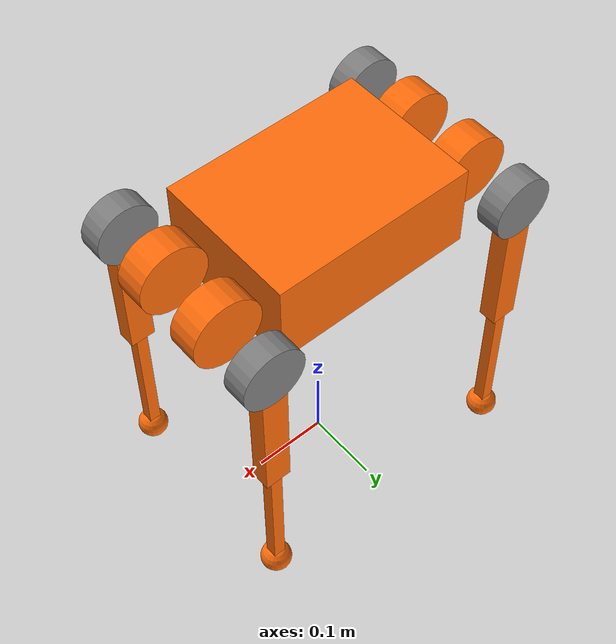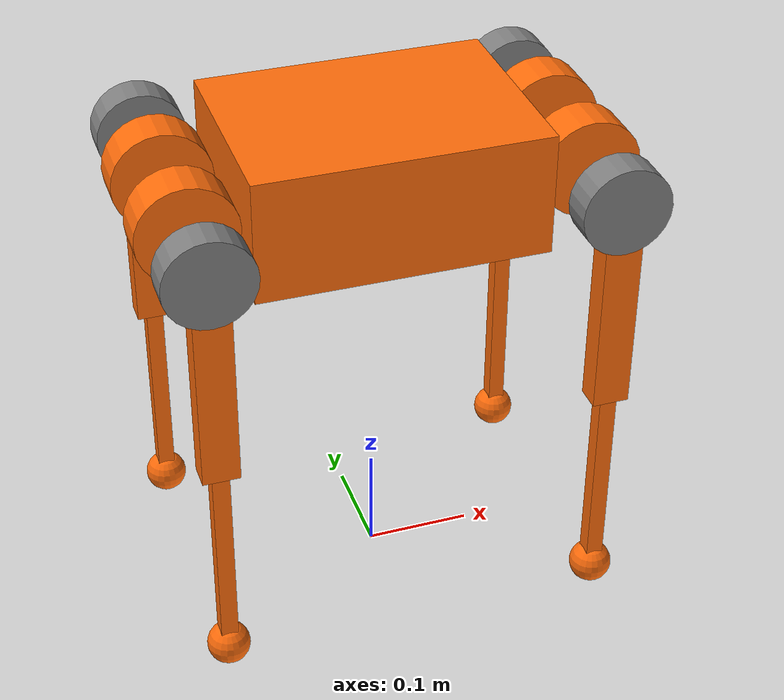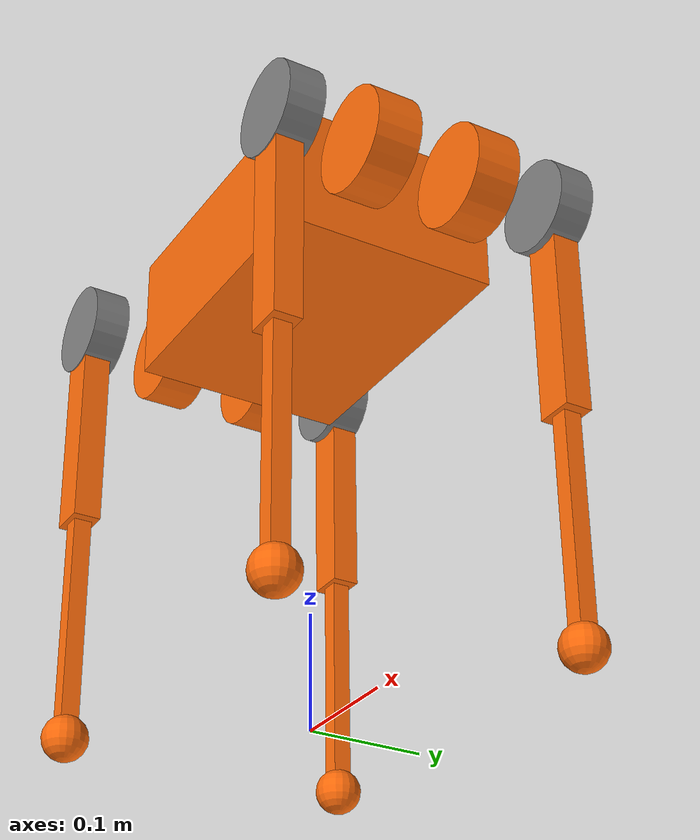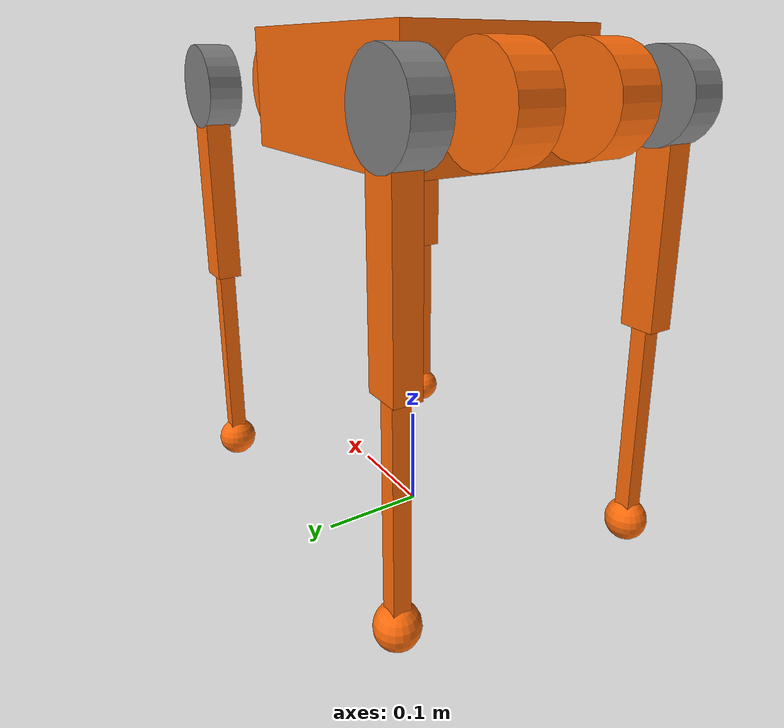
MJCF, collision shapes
<mujoco model="a1">
  <compiler angle="radian" meshdir="./assets/"/>
  <asset>
    <mesh name="trunk" file="trunk.obj"/>
    <mesh name="hip" file="hip.obj"/>
    <mesh name="thigh_mirror" file="thigh_mirror.obj"/>
    <mesh name="calf" file="calf.obj"/>
    <mesh name="thigh" file="thigh.obj"/>
  </asset>
  <worldbody>
    <light name="spotlight" mode="targetbodycom" target="trunk" pos="0 -1 2"/>
    <body name="trunk" pos="0 0 0.43" >
    <freejoint/>
    <geom size="0.0005 0.0005 0.0005" type="box" contype="0" conaffinity="0" group="1" density="0"/>
    <geom type="mesh" contype="0" conaffinity="0" group="1" density="0" rgba="1 0.423529 0.0392157 1" mesh="trunk"/>
    <geom size="0.1335 0.097 0.057" type="box" rgba="1 0.423529 0.0392157 1"/>
    <geom size="0.0005 0.0005 0.0005" type="box" contype="0" conaffinity="0" group="1" density="0" rgba="0.8 0 0 1"/>
    <geom size="0.0005 0.0005 0.0005" type="box" rgba="0.8 0 0 1"/>
    <site name="imu" pos="0 0 0"/>
    <body name="FR_hip" pos="0.1805 -0.047 0">
      <inertial pos="-0.00266413 -0.0163358 2.49436e-05" quat="0.475134 0.521822 -0.477036 0.523818" mass="0.864993" diaginertia="0.00151807 0.00143717 0.000946744"/>
      <joint name="FR_hip_joint" pos="0 0 0" axis="1 0 0" range="-0.802851 0.802851" actuatorfrcrange="-33.5 33.5" damping="0.01" frictionloss="0.2"/>
      <geom quat="0 1 0 0" type="mesh" contype="0" conaffinity="0" group="1" density="0" rgba="1 0.423529 0.0392157 1" mesh="hip"/>
      <geom size="0.046 0.02" quat="0.707107 0.707107 0 0" type="cylinder" rgba="1 0.423529 0.0392157 1"/>
      <geom size="0.041 0.016" pos="0 -0.081 0" quat="0.707107 0.707107 0 0" type="cylinder"/>
      <body name="FR_thigh" pos="0 -0.0838 0">
        <inertial pos="-0.003237 0.022327 -0.027326" quat="0.999125 -0.00256393 -0.0409531 -0.00806091" mass="1.013" diaginertia="0.00555739 0.00513936 0.00133944"/>
        <joint name="FR_thigh_joint" pos="0 0 0" axis="0 1 0" range="-1.0472 4.18879" actuatorfrcrange="-33.5 33.5" damping="0.01" frictionloss="0.2"/>
        <geom type="mesh" contype="0" conaffinity="0" group="1" density="0" rgba="1 0.423529 0.0392157 1" mesh="thigh_mirror"/>
        <geom size="0.1 0.01225 0.017" pos="0 0 -0.1" quat="0.707107 0 0.707107 0" type="box" rgba="1 0.423529 0.0392157 1"/>
        <body name="FR_calf" pos="0 0 -0.2">
          <inertial pos="0.00472659 0 -0.131975" quat="0.706886 0.017653 0.017653 0.706886" mass="0.226" diaginertia="0.00340344 0.00339393 3.54834e-05"/>
          <joint name="FR_calf_joint" pos="0 0 0" axis="0 1 0" range="-2.69653 -0.916298" actuatorfrcrange="-33.5 33.5" damping="0.01" frictionloss="0.2"/>
          <geom type="mesh" contype="0" conaffinity="0" group="1" density="0" rgba="1 0.423529 0.0392157 1" mesh="calf"/>
          <geom size="0.1 0.008 0.008" pos="0 0 -0.1" quat="0.707107 0 0.707107 0" type="box" rgba="1 0.423529 0.0392157 1"/>
          <geom size="0.01" pos="0 0 -0.2" contype="0" conaffinity="0" group="1" density="0" rgba="1 0.423529 0.0392157 1"/>
          <geom size="0.02" pos="0 0 -0.2" rgba="1 0.423529 0.0392157 1"/>
        </body>
      </body>
    </body>
    <body name="FL_hip" pos="0.1805 0.047 0">
      <inertial pos="-0.00266413 0.0163358 2.49436e-05" quat="0.521822 0.475134 -0.523818 0.477036" mass="0.864993" diaginertia="0.00151807 0.00143717 0.000946744"/>
      <joint name="FL_hip_joint" pos="0 0 0" axis="1 0 0" range="-0.802851 0.802851" actuatorfrcrange="-33.5 33.5" damping="0.01" frictionloss="0.2"/>
      <geom type="mesh" contype="0" conaffinity="0" group="1" density="0" rgba="1 0.423529 0.0392157 1" mesh="hip"/>
      <geom size="0.046 0.02" quat="0.707107 0.707107 0 0" type="cylinder" rgba="1 0.423529 0.0392157 1"/>
      <geom size="0.041 0.016" pos="0 0.081 0" quat="0.707107 0.707107 0 0" type="cylinder"/>
      <body name="FL_thigh" pos="0 0.0838 0">
        <inertial pos="-0.003237 -0.022327 -0.027326" quat="0.999125 0.00256393 -0.0409531 0.00806091" mass="1.013" diaginertia="0.00555739 0.00513936 0.00133944"/>
        <joint name="FL_thigh_joint" pos="0 0 0" axis="0 1 0" range="-1.0472 4.18879" actuatorfrcrange="-33.5 33.5" damping="0.01" frictionloss="0.2"/>
        <geom type="mesh" contype="0" conaffinity="0" group="1" density="0" rgba="1 0.423529 0.0392157 1" mesh="thigh"/>
        <geom size="0.1 0.01225 0.017" pos="0 0 -0.1" quat="0.707107 0 0.707107 0" type="box" rgba="1 0.423529 0.0392157 1"/>
        <body name="FL_calf" pos="0 0 -0.2">
          <inertial pos="0.00472659 0 -0.131975" quat="0.706886 0.017653 0.017653 0.706886" mass="0.226" diaginertia="0.00340344 0.00339393 3.54834e-05"/>
          <joint name="FL_calf_joint" pos="0 0 0" axis="0 1 0" range="-2.69653 -0.916298" actuatorfrcrange="-33.5 33.5" damping="0.01" frictionloss="0.2"/>
          <geom type="mesh" contype="0" conaffinity="0" group="1" density="0" rgba="1 0.423529 0.0392157 1" mesh="calf"/>
          <geom size="0.1 0.008 0.008" pos="0 0 -0.1" quat="0.707107 0 0.707107 0" type="box" rgba="1 0.423529 0.0392157 1"/>
          <geom size="0.01" pos="0 0 -0.2" contype="0" conaffinity="0" group="1" density="0" rgba="1 0.423529 0.0392157 1"/>
          <geom size="0.02" pos="0 0 -0.2" rgba="1 0.423529 0.0392157 1"/>
        </body>
      </body>
    </body>
    <body name="RR_hip" pos="-0.1805 -0.047 0">
      <inertial pos="0.00266413 -0.0163358 2.49436e-05" quat="0.523818 0.477036 -0.521822 0.475134" mass="0.864993" diaginertia="0.00151807 0.00143717 0.000946744"/>
      <joint name="RR_hip_joint" pos="0 0 0" axis="1 0 0" range="-0.802851 0.802851" actuatorfrcrange="-33.5 33.5" damping="0.01" frictionloss="0.2"/>
      <geom quat="0 0 0 -1" type="mesh" contype="0" conaffinity="0" group="1" density="0" rgba="1 0.423529 0.0392157 1" mesh="hip"/>
      <geom size="0.046 0.02" quat="0.707107 0.707107 0 0" type="cylinder" rgba="1 0.423529 0.0392157 1"/>
      <geom size="0.041 0.016" pos="0 -0.081 0" quat="0.707107 0.707107 0 0" type="cylinder"/>
      <body name="RR_thigh" pos="0 -0.0838 0">
        <inertial pos="-0.003237 0.022327 -0.027326" quat="0.999125 -0.00256393 -0.0409531 -0.00806091" mass="1.013" diaginertia="0.00555739 0.00513936 0.00133944"/>
        <joint name="RR_thigh_joint" pos="0 0 0" axis="0 1 0" range="-1.0472 4.18879" actuatorfrcrange="-33.5 33.5" damping="0.01" frictionloss="0.2"/>
        <geom type="mesh" contype="0" conaffinity="0" group="1" density="0" rgba="1 0.423529 0.0392157 1" mesh="thigh_mirror"/>
        <geom size="0.1 0.01225 0.017" pos="0 0 -0.1" quat="0.707107 0 0.707107 0" type="box" rgba="1 0.423529 0.0392157 1"/>
        <body name="RR_calf" pos="0 0 -0.2">
          <inertial pos="0.00472659 0 -0.131975" quat="0.706886 0.017653 0.017653 0.706886" mass="0.226" diaginertia="0.00340344 0.00339393 3.54834e-05"/>
          <joint name="RR_calf_joint" pos="0 0 0" axis="0 1 0" range="-2.69653 -0.916298" actuatorfrcrange="-33.5 33.5" damping="0.01" frictionloss="0.2"/>
          <geom type="mesh" contype="0" conaffinity="0" group="1" density="0" rgba="1 0.423529 0.0392157 1" mesh="calf"/>
          <geom size="0.1 0.008 0.008" pos="0 0 -0.1" quat="0.707107 0 0.707107 0" type="box" rgba="1 0.423529 0.0392157 1"/>
          <geom size="0.01" pos="0 0 -0.2" contype="0" conaffinity="0" group="1" density="0" rgba="1 0.423529 0.0392157 1"/>
          <geom size="0.02" pos="0 0 -0.2" rgba="1 0.423529 0.0392157 1"/>
        </body>
      </body>
    </body>
    <body name="RL_hip" pos="-0.1805 0.047 0">
      <inertial pos="0.00266413 0.0163358 2.49436e-05" quat="0.477036 0.523818 -0.475134 0.521822" mass="0.864993" diaginertia="0.00151807 0.00143717 0.000946744"/>
      <joint name="RL_hip_joint" pos="0 0 0" axis="1 0 0" range="-0.802851 0.802851" actuatorfrcrange="-33.5 33.5" damping="0.01" frictionloss="0.2"/>
      <geom quat="0 0 1 0" type="mesh" contype="0" conaffinity="0" group="1" density="0" rgba="1 0.423529 0.0392157 1" mesh="hip"/>
      <geom size="0.046 0.02" quat="0.707107 0.707107 0 0" type="cylinder" rgba="1 0.423529 0.0392157 1"/>
      <geom size="0.041 0.016" pos="0 0.081 0" quat="0.707107 0.707107 0 0" type="cylinder"/>
      <body name="RL_thigh" pos="0 0.0838 0">
        <inertial pos="-0.003237 -0.022327 -0.027326" quat="0.999125 0.00256393 -0.0409531 0.00806091" mass="1.013" diaginertia="0.00555739 0.00513936 0.00133944"/>
        <joint name="RL_thigh_joint" pos="0 0 0" axis="0 1 0" range="-1.0472 4.18879" actuatorfrcrange="-33.5 33.5" damping="0.01" frictionloss="0.2"/>
        <geom type="mesh" contype="0" conaffinity="0" group="1" density="0" rgba="1 0.423529 0.0392157 1" mesh="thigh"/>
        <geom size="0.1 0.01225 0.017" pos="0 0 -0.1" quat="0.707107 0 0.707107 0" type="box" rgba="1 0.423529 0.0392157 1"/>
        <body name="RL_calf" pos="0 0 -0.2">
          <inertial pos="0.00472659 0 -0.131975" quat="0.706886 0.017653 0.017653 0.706886" mass="0.226" diaginertia="0.00340344 0.00339393 3.54834e-05"/>
          <joint name="RL_calf_joint" pos="0 0 0" axis="0 1 0" range="-2.69653 -0.916298" actuatorfrcrange="-33.5 33.5" damping="0.01" frictionloss="0.2"/>
          <geom type="mesh" contype="0" conaffinity="0" group="1" density="0" rgba="1 0.423529 0.0392157 1" mesh="calf"/>
          <geom size="0.1 0.008 0.008" pos="0 0 -0.1" quat="0.707107 0 0.707107 0" type="box" rgba="1 0.423529 0.0392157 1"/>
          <geom size="0.01" pos="0 0 -0.2" contype="0" conaffinity="0" group="1" density="0" rgba="1 0.423529 0.0392157 1"/>
          <geom size="0.02" pos="0 0 -0.2" rgba="1 0.423529 0.0392157 1"/>
        </body>
      </body>
    </body>
    </body>
  </worldbody>

  <actuator>
    <motor name="FR_hip" joint="FR_hip_joint" gear="1" ctrlrange="-33.5 33.5" ctrllimited='true' />
    <motor name="FR_thigh" joint="FR_thigh_joint" gear="1" ctrlrange="-33.5 33.5" ctrllimited='true' />
    <motor name="FR_calf" joint="FR_calf_joint" gear="1" ctrlrange="-33.5 33.5" ctrllimited='true' />
    <motor name="FL_hip" joint="FL_hip_joint" gear="1" ctrlrange="-33.5 33.5" ctrllimited='true' />
    <motor name="FL_thigh" joint="FL_thigh_joint" gear="1" ctrlrange="-33.5 33.5" ctrllimited='true' />
    <motor name="FL_calf" joint="FL_calf_joint" gear="1" ctrlrange="-33.5 33.5" ctrllimited='true' />
    <motor name="RR_hip" joint="RR_hip_joint" gear="1" ctrlrange="-33.5 33.5" ctrllimited='true' />
    <motor name="RR_thigh" joint="RR_thigh_joint" gear="1" ctrlrange="-33.5 33.5" ctrllimited='true' />
    <motor name="RR_calf" joint="RR_calf_joint" gear="1" ctrlrange="-33.5 33.5" ctrllimited='true' />
    <motor name="RL_hip" joint="RL_hip_joint" gear="1" ctrlrange="-33.5 33.5" ctrllimited='true' />
    <motor name="RL_thigh" joint="RL_thigh_joint" gear="1" ctrlrange="-33.5 33.5" ctrllimited='true' />
    <motor name="RL_calf" joint="RL_calf_joint" gear="1" ctrlrange="-33.5 33.5" ctrllimited='true' />
  </actuator>

  <sensor>
    <framequat name="imu_quat" objtype="site" objname="imu" />
    <gyro name="gyro" site="imu"/>
    <accelerometer name="acc" site="imu"/>
  </sensor>
</mujoco>
